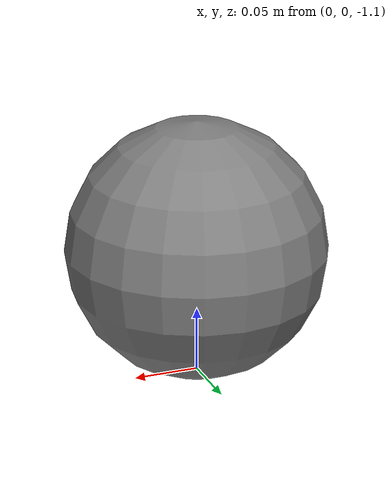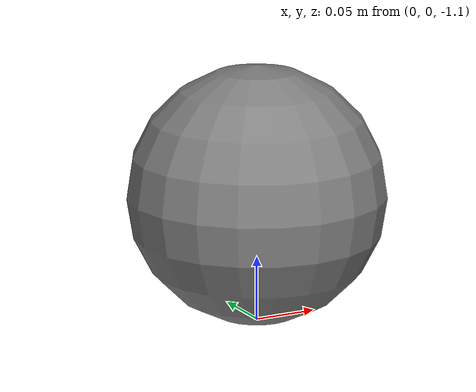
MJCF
<mujoco model="energy_test">
            <option gravity="0 0 -9.81" timestep="0.0001">
                <flag energy="enable"/>
            </option>
            <worldbody>
                <body name="pendulum" pos="0 0 0">
                    <joint type="hinge" axis="0 1 0"/>
                    <geom type="sphere" size="0.1" pos="0 0 -1" mass="1.0"/>
                </body>
            </worldbody>
        </mujoco>
